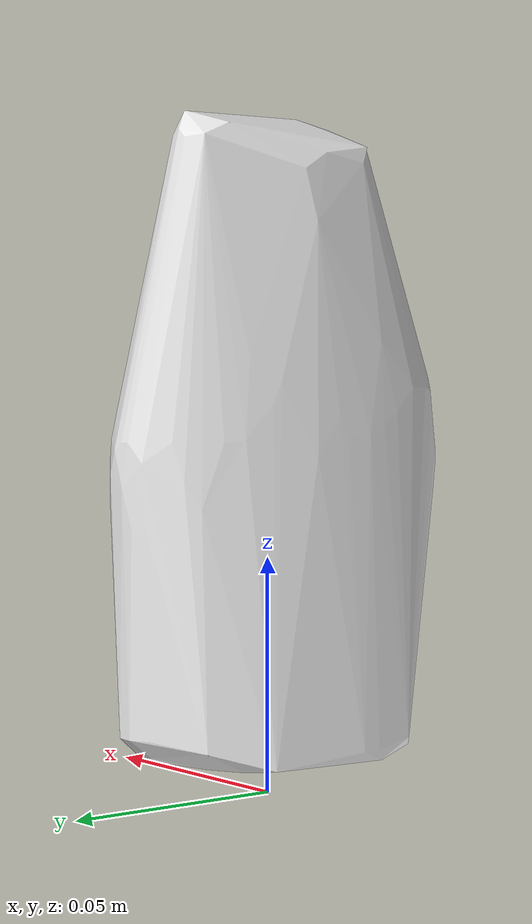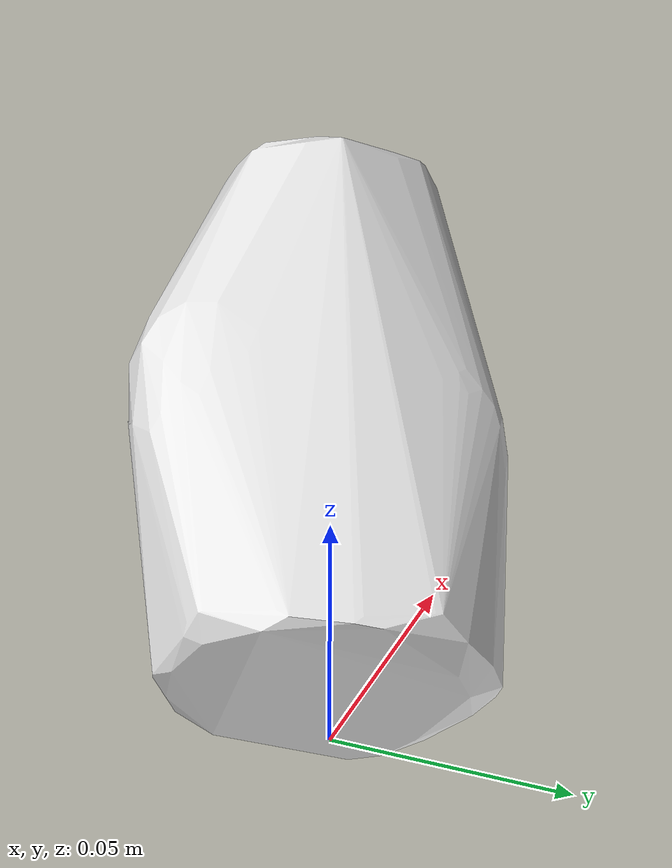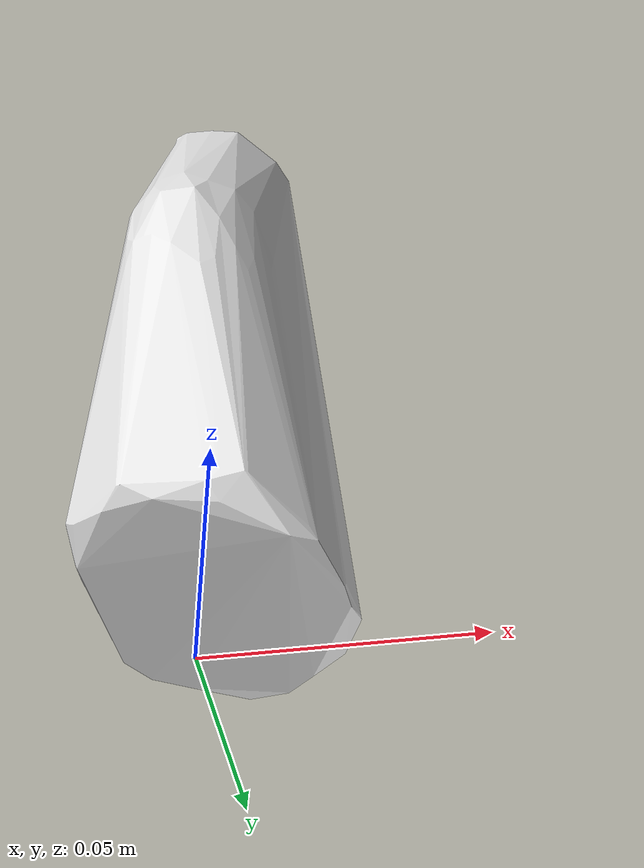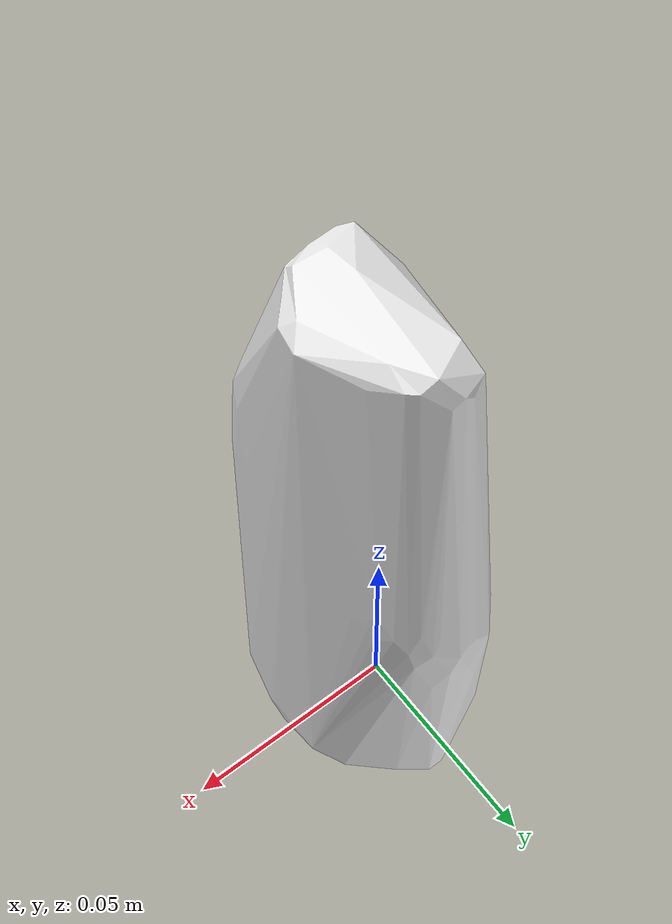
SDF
<?xml version='1.0'?>
<sdf version="1.4">
  <model name="softsoap_white">
    <static>false</static>
    <link name="link">
      <inertial>
        <pose>0.003169758642036959 -0.0030950117493753326 0.06406802471189318 -3.131841391660729 0.02154618900110953 3.007977194339014</pose>
        <mass>0.02458804407285318</mass>
        <inertia>
          <ixx>3.784042155852648e-05</ixx>
          <ixy>2.402268902083212e-22</ixy>
          <ixz>-6.38841622455446e-22</ixz>
          <iyy>3.25558856561638e-05</iyy>
          <iyz>-3.861043603761755e-21</iyz>
          <izz>9.496071258941712e-06</izz>
        </inertia>
      </inertial>
      <collision name="collision">
        <geometry>
          <mesh>
            <!-- Use a downsampled mesh for collisions -->
            <uri>model:///softsoap_white/softsoap_white_250_collision.obj</uri>
	        </mesh>
        </geometry>
        <surface>
      </surface>
      </collision>
      <visual name="visual">
        <geometry>
          <mesh>
            <uri>model:///softsoap_white/optimized_tsdf_texture_mapped_mesh.obj</uri>
	        </mesh>
        </geometry>
        <material>
          <script>
            <uri>model:///softsoap_white/softsoap_white.material</uri>
            <name>softsoap_white</name>
          </script>
        </material>
      </visual>
    </link>
  </model>
</sdf>
